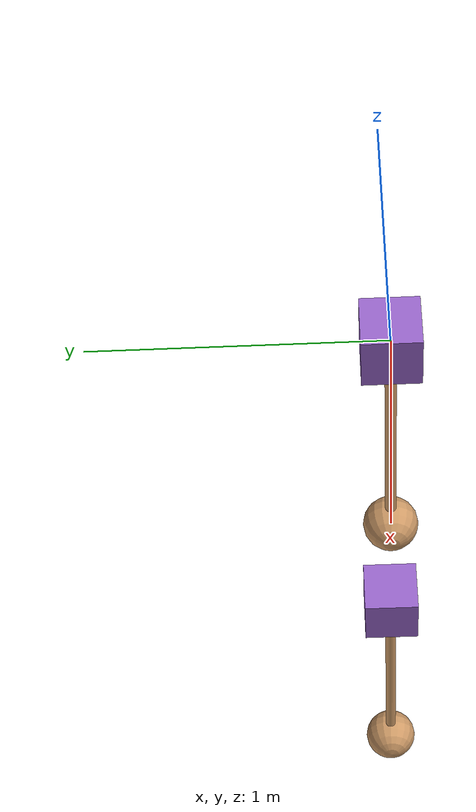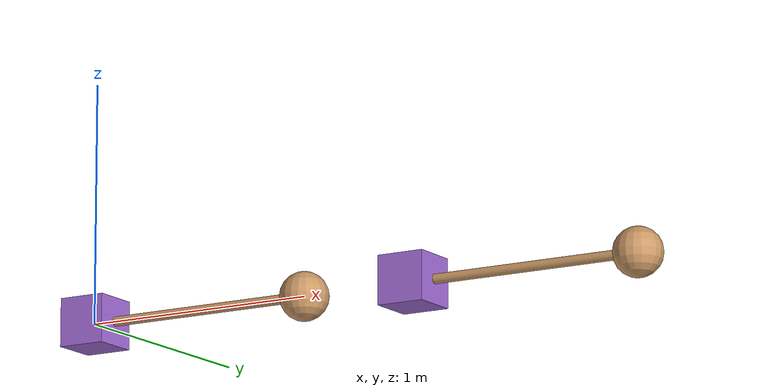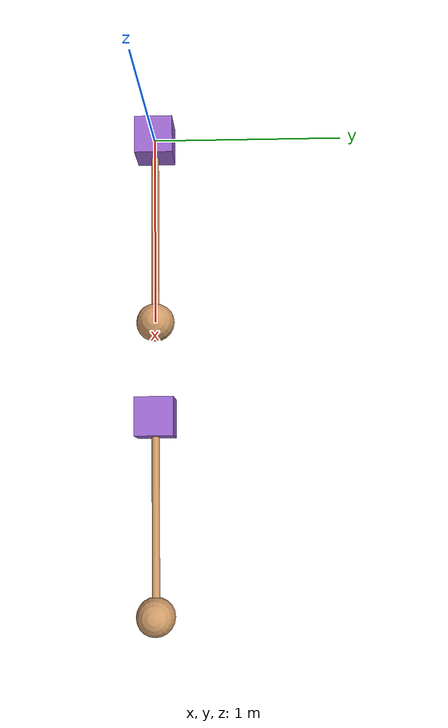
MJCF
<mujoco>
  <visual>
    <global elevation="-20"/>
    <headlight ambient=".3 .3 .3" diffuse=".9 .9 .9"/>
  </visual>

  <default>
    <geom rgba="0.8 0.6 .4 1"/>
  </default>

  <worldbody>
    <!-- Left pendulum (same as before, with motor) -->
    <body name="link1">
      <joint name="link1" axis="0 -1 0"/>
      <geom type="capsule" size=".02" fromto="0 0 0 1 0 0" mass="0"/>
      <geom type="sphere" size=".1" mass="1" pos="1 0 0"/>
    </body>

    <body name="motor1">
      <joint name="motor1" axis="0 -1 0"/>
      <geom type="box" size=".1 .1 .1" mass="30" contype="0" conaffinity="0" rgba=".6 .4 .8 1"/>
    </body>

    <!-- Right pendulum with reinforced joint -->
    <body name="link2" pos="1.5 0 0">
      <!-- increased armature to represent reinforcement -->
      <joint name="link2" armature="2.5" axis="0 -1 0" damping="0.002"/>
      <geom type="capsule" size=".02" fromto="0 0 0 1 0 0" mass="0"/>
      <geom type="sphere" size=".1" mass="1" pos="1 0 0"/>

      <!-- visible reinforcement body at the joint -->
      <body name="joint_reinforcement" pos="0 0 0">
        <geom type="box" size=".1 .1 .1" mass="1" rgba=".6 .4 .8 1"/>
      </body>
    </body>
  </worldbody>

  <equality>
    <!-- gear ratio for left pendulum remains -->
    <joint joint1="motor1" joint2="link1" polycoef="0 3"/>
  </equality>

  <actuator>
    <!-- actuator for left pendulum only -->
    <position name="link1" joint="motor1" kp=".3" ctrlrange="-5 5"/>
  </actuator>

  <keyframe>
    <!-- initial tilt for right pendulum -->
    <key name="initial_pose" qpos="0 0 0.4"/>
  </keyframe>
</mujoco>
